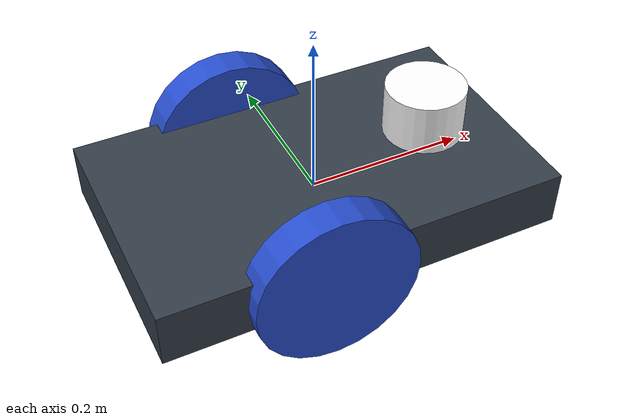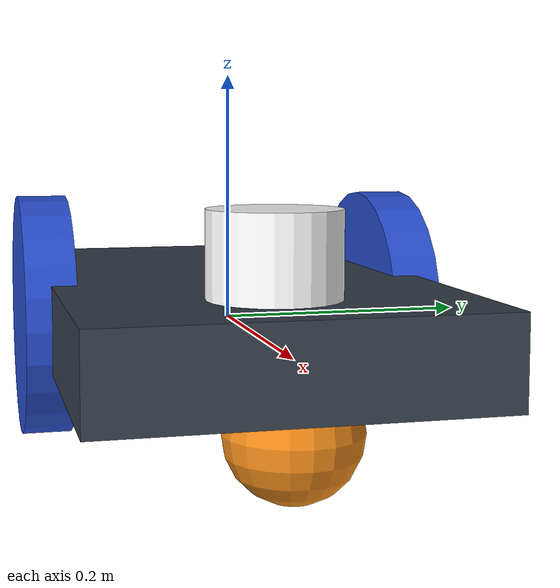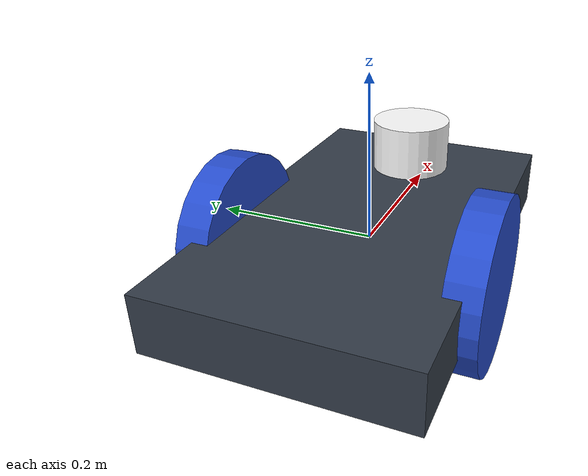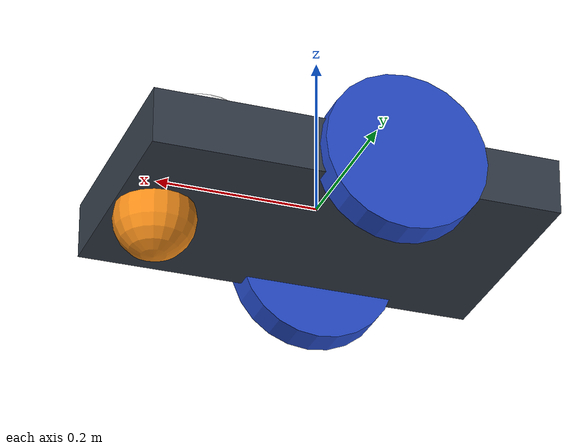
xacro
<?xml version="1.0" ?>
<!-- |    This document was autogenerated by xacro from /root/ros_ws/src/explab_2nd/urdf/detectiBot.xacro | -->
<!-- |    EDITING THIS FILE BY HAND IS NOT RECOMMENDED                                 | -->
<robot xmlns:xacro="http://www.ros.org/wiki/xacro" name="detectiBot">
    <!-- |                                 detectiBot model                                | -->
    <!-- |                             Experimental robotics lab                           | -->
    <!-- ==================================== Xacro include ============================================ -->
    <material name="neongreen">
        <color rgba="0.047058823529411764 1.0 0.047058823529411764 1.0" />
    </material>
    <material name="black">
        <color rgba="0.0 0.0 0.0 1.0" />
    </material>
    <material name="acidgreen">
        <color rgba="0.5607843137254902 0.996078431372549 0.03529411764705882 1.0" />
    </material>
    <material name="blue">
        <color rgba="0.203125 0.23828125 0.28515625 1.0" />
    </material>
    <material name="green">
        <color rgba="0.0 0.8 0.0 1.0" />
    </material>
    <material name="ocre">
        <color rgba="0.7764705882352941 0.611764705882353 0.01568627450980392 1.0" />
    </material>
    <material name="grey">
        <color rgba="0.2 0.2 0.2 1.0" />
    </material>
    <material name="bruise">
        <color rgba="0.49411764705882355 0.25098039215686274 0.44313725490196076 1.0" />
    </material>
    <material name="orange">
        <color rgba="1.0 0.423529411765 0.0392156862745 1.0" />
    </material>
    <material name="brown">
        <color rgba="0.870588235294 0.811764705882 0.764705882353 1.0" />
    </material>
    <material name="burgundy">
        <color rgba="0.3803921568627451 0.0 0.13725490196078433 1.0" />
    </material>
    <material name="dusk">
        <color rgba="0.3058823529411765 0.32941176470588235 0.5058823529411764 1.0" />
    </material>
    <material name="red">
        <color rgba="0.80078125 0.12890625 0.1328125 1.0" />
    </material>
    <material name="white">
        <color rgba="1.0 1.0 1.0 1.0" />
    </material>
    <!-- ==================================== gazebo/material  ========================================= -->
    <!-- ======================================== Joint  =============================================== -->
    <!-- ========================================= FB  ================================================= -->
    <gazebo reference="base_link">
        <material>Gazebo/Orange</material>
    </gazebo>
    <gazebo reference="link_left_wheel">
        <material>Gazebo/Blue</material>
    </gazebo>
    <gazebo reference="link_right_wheel">
        <material>Gazebo/Blue</material>
    </gazebo>
    <gazebo reference="arm_base_link">
        <material>Gazebo/Red</material>
    </gazebo>
    <gazebo reference="arm_link_01">
        <material>Gazebo/Red</material>
    </gazebo>
    <gazebo reference="arm_link_02">
        <material>Gazebo/Red</material>
    </gazebo>
    <gazebo reference="arm_link_03">
        <material>Gazebo/Red</material>
    </gazebo>
    <gazebo reference="arm_link_03">
        <material>Gazebo/Red</material>
    </gazebo>
    <gazebo reference="arm_link_04">
        <material>Gazebo/Red</material>
    </gazebo>
    <gazebo reference="right_grip_link">
        <material>Gazebo/White</material>
    </gazebo>
    <gazebo reference="left_grip_link">
        <material>Gazebo/White</material>
    </gazebo>
    <!-- ========================================= FB  ================================================= -->
    <gazebo reference="arm_joint_02">
        <provideFeedback>true</provideFeedback>
    </gazebo>
    <!-- ======================================  Plugins  ============================================== -->
    <gazebo>
        <plugin filename="libgazebo_ros_ft_sensor.so" name="ft_sensor">
            <updateRate>100.0</updateRate>
            <topicName>ft_sensor_topic</topicName>
            <jointName>arm_joint_02</jointName>
        </plugin>
    </gazebo>
    <gazebo>
        <plugin filename="libgazebo_ros_diff_drive.so" name="differential_drive_controller">
            <legacyMode>true</legacyMode>
            <alwaysOn>true</alwaysOn>
            <updateRate>20</updateRate>
            <leftJoint>joint_right_wheel</leftJoint>
            <rightJoint>joint_left_wheel</rightJoint>
            <wheelSeparation>0.3</wheelSeparation>
            <wheelDiameter>0.2</wheelDiameter>
            <torque>0.1</torque>
            <commandTopic>cmd_vel</commandTopic>
            <odometryTopic>odom</odometryTopic>
            <odometryFrame>odom</odometryFrame>
            <robotBaseFrame>base_link</robotBaseFrame>
            <rosDebugLevel>na</rosDebugLevel>
            <publishWheelTF>true</publishWheelTF>
            <publishWheelJointState>true</publishWheelJointState>
            <wheelAcceleration>0</wheelAcceleration>
            <wheelTorque>5</wheelTorque>
            <odometrySource>1</odometrySource>
            <publishTf>1</publishTf>
        </plugin>
    </gazebo>
    <gazebo reference="laser">
        <sensor name="head_hokuyo_sensor" type="ray">
            <pose>0 0 0 0 0 0</pose>
            <visualize>false</visualize>
            <update_rate>20</update_rate>
            <ray>
                <scan>
                    <horizontal>
                        <samples>720</samples>
                        <resolution>1</resolution>
                        <min_angle>-1.570796</min_angle>
                        <max_angle>1.570796</max_angle>
                    </horizontal>
                </scan>
                <range>
                    <min>0.10</min>
                    <max>10.0</max>
                    <resolution>0.01</resolution>
                </range>
                <noise>
                    <type>gaussian</type>
                    <mean>0.0</mean>
                    <stddev>0.01</stddev>
                </noise>
            </ray>
            <plugin filename="libgazebo_ros_laser.so" name="gazebo_ros_head_hokuyo_controller">
                <topicName>/scan</topicName>
                <frameName>laser</frameName>
            </plugin>
        </sensor>
    </gazebo>
    <!-- ===================================== ROS_CONTROL  ============================================ -->
    <gazebo>
        <plugin filename="libgazebo_ros_control.so" name="gazebo_ros_control">
            <robotNamespace>m2wr</robotNamespace>
            <robotSimType>gazebo_ros_control/DefaultRobotHWSim</robotSimType>
            <legacyModeNS>true</legacyModeNS>
        </plugin>
    </gazebo>
    <!-- ================================== Properties' list ============================================ -->
    <!-- ======================== All units in m-kg-s-radians unit system =============================== -->
    <!-- math and conversion  -->
    <!-- mass  -->
    <!-- lenght -->
    <!-- ================================== Xacro definitions ========================================== -->
    <!-- ======================================== Link  ================================================ -->
    <link name="base_link">
        <!-- pose and inertial -->
        <pose>0 0 0.1 0 0 0</pose>

<inertial>
            <mass value="0.5" />
            <origin rpy="0 0 0" xyz="0 0 0.1" />
            <inertia ixx="0.0395416666667" ixy="0" ixz="0" iyy="0.106208333333" iyz="0" izz="0.106208333333" />
        </inertial>

        <!-- chassis collision -->
        <collision name="collision_chassis">
            <geometry>
                <box size="0.5 0.3 0.07" />
            </geometry>
        </collision>
        <visual>
            <origin rpy="0 0 0" xyz="0 0 0" />
            <geometry>
                <box size="0.5 0.3 0.07" />
            </geometry>
            <material name="blue" />
        </visual>
        <!-- caster front collision -->
        <collision name="caster_front_collision">
            <origin rpy=" 0 0 0" xyz="0.35 0 -0.05" />
            <geometry>
                <sphere radius="0.05" />
            </geometry>
            <surface>
                <friction>
                    <ode>
                        <mu>0</mu>
                        <mu2>0</mu2>
                        <slip1>1.0</slip1>
                        <slip2>1.0</slip2>
                    </ode>
                </friction>
            </surface>
        </collision>
        <visual name="caster_front_visual">
            <origin rpy=" 0 0 0" xyz="0.2 0 -0.05" />
            <geometry>
                <sphere radius="0.05" />
            </geometry>
        </visual>
    </link>
    <!-- ==================================== Create wheels ============================================ -->
    <link name="link_right_wheel">

<inertial>
            <mass value="0.2" />
            <origin rpy="0 1.5707 1.5707" xyz="0 0 0" />
            <inertia ixx="0.000526666666667" ixy="0" ixz="0" iyy="0.000526666666667" iyz="0" izz="0.001" />
        </inertial>

        <collision name="link_right_wheel_collision">
            <origin rpy="0 1.5707 1.5707" xyz="0 0 0" />
            <geometry>
                <cylinder length="0.04" radius="0.1" />
            </geometry>
        </collision>
        <visual name="link_right_wheel_visual">
            <origin rpy="0 1.5707 1.5707" xyz="0 0 0" />
            <geometry>
                <cylinder length="0.04" radius="0.1" />
            </geometry>
        </visual>
    </link>
    <link name="link_left_wheel">

<inertial>
            <mass value="0.2" />
            <origin rpy="0 1.5707 1.5707" xyz="0 0 0" />
            <inertia ixx="0.000526666666667" ixy="0" ixz="0" iyy="0.000526666666667" iyz="0" izz="0.001" />
        </inertial>

        <collision name="link_right_wheel_collision">
            <origin rpy="0 1.5707 1.5707" xyz="0 0 0" />
            <geometry>
                <cylinder length="0.04" radius="0.1" />
            </geometry>
        </collision>
        <visual name="link_left_wheel_visual">
            <origin rpy="0 1.5707 1.5707" xyz="0 0 0" />
            <geometry>
                <cylinder length="0.04" radius="0.1" />
            </geometry>
        </visual>
    </link>
    <joint name="joint_right_wheel" type="continuous">
        <origin rpy="0 0 0" xyz="-0.05 0.15 0" />
        <child link="link_right_wheel" />
        <parent link="base_link" />
        <axis rpy="0 0 0" xyz="0 1 0" />
        <limit effort="10000" velocity="1000" />
        <joint_properties damping="1.0" friction="1.0" />
    </joint>
    <joint name="joint_left_wheel" type="continuous">
        <origin rpy="0 0 0" xyz="-0.05 -0.15 0" />
        <child link="link_left_wheel" />
        <parent link="base_link" />
        <axis rpy="0 0 0" xyz="0 1 0" />
        <limit effort="10000" velocity="1000" />
        <joint_properties damping="1.0" friction="1.0" />
    </joint>
    <!-- ======================================== Link  ================================================ -->
    <link name="laser">

<inertial>
            <origin rpy="0 0 0" xyz="0 0 0" />
            <mass value="1" />
            <inertia ixx="0.0014583333333333334" ixy="0" ixz="0" iyy="0.0014583333333333334" iyz="0" izz="0.0012500000000000002" />
        </inertial>

        <visual>
            <origin rpy="0 0 0" xyz="0 0 0" />
            <geometry>
                <cylinder length="0.1" radius="0.05" />
            </geometry>
            <material name="white" />
        </visual>
        <collision>
            <origin rpy="0 0 0" xyz="0 0 0" />
            <geometry>
                <cylinder length="0.1" radius="0.05" />
            </geometry>
        </collision>
    </link>
    <!-- ======================================== Joint  =============================================== -->
    <joint name="joint_laser" type="fixed">
        <origin rpy="0 0 0" xyz="0.15 0 0.05" />
        <parent link="base_link" />
        <child link="laser" />
    </joint>
    <!-- ======================================== Link  ================================================ -->

   <!-- camera -->
  <gazebo reference="camera_link">
    <sensor type="camera" name="camera1">
      <update_rate>30.0</update_rate>
      <camera name="head">
        <horizontal_fov>1.3962634</horizontal_fov>
        <image>
          <width>800</width>
          <height>800</height>
          <format>R8G8B8</format>
        </image>
        <clip>
          <near>0.02</near>
          <far>300</far>
        </clip>
		<noise>
          <type>gaussian</type>
          <mean>0.0</mean>
          <stddev>0.007</stddev>
        </noise>
      </camera>
      <plugin name="camera_controller" filename="libgazebo_ros_camera.so">
        <alwaysOn>true</alwaysOn>
        <updateRate>0.0</updateRate>
        <cameraName>robot/camera1</cameraName>
        <imageTopicName>image_raw</imageTopicName>
        <cameraInfoTopicName>camera_info</cameraInfoTopicName>
        <frameName>camera_link</frameName>
        <hackBaseline>0.07</hackBaseline>
        <distortionK1>0.0</distortionK1>
        <distortionK2>0.0</distortionK2>
        <distortionK3>0.0</distortionK3>
        <distortionT1>0.0</distortionT1>
        <distortionT2>0.0</distortionT2>
      </plugin>
    </sensor>
  </gazebo>

  	<link name="camera_link">
	    <collision>
	      <origin xyz="0 0 0.025" rpy="0 0 0"/>
	    <geometry>
		<box size="0.05 0.05 0.05"/>
	    </geometry> -->
	    </collision>
	    <inertial>
	      <mass value="1e-5" />
	      <origin xyz="0 0 0" rpy="0 0 0"/>
	      <inertia ixx="1e-6" ixy="0" ixz="0" iyy="1e-6" iyz="0" izz="1e-6" />
	    </inertial>
  </link>

  <joint name="camera_joint" type="fixed">
	    <axis xyz="0 1 0" />
	    <origin xyz="0.23 0 0.25" rpy="0 0 0"/>
	    <parent link="base_link"/>
	    <child link="camera_link"/>
	 </joint>

</robot>
